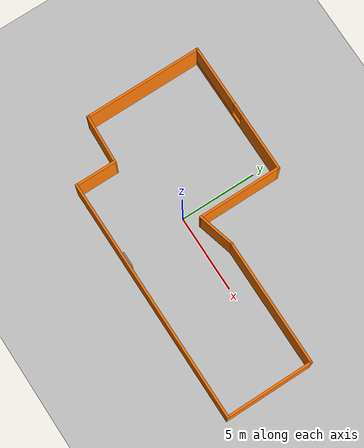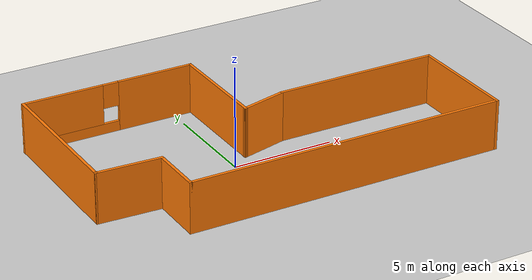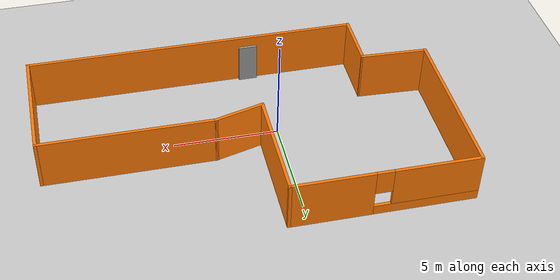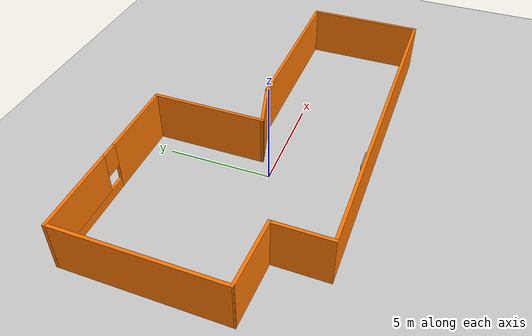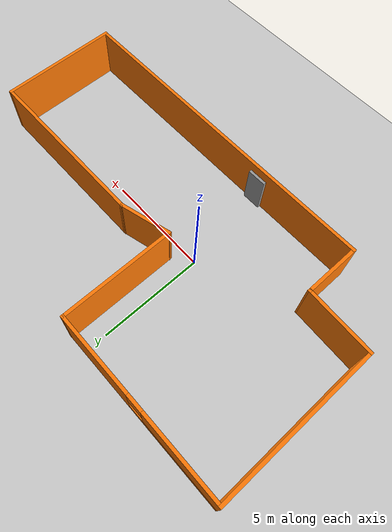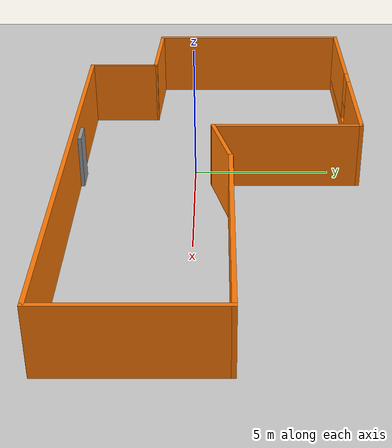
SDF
<sdf version="1.7">
 <world name="default">
  <light name="sun" type="directional">
   <pose>0 0 10 0 -0 0</pose>
   <diffuse>0.8 0.8 0.8 1</diffuse>
   <specular>0.2 0.2 0.2 1</specular>
   <attenuation>
    <range>1000</range>
    <constant>0.9</constant>
    <linear>0.01</linear>
    <quadratic>0.001</quadratic>
   </attenuation>
   <direction>-0.5 0.1 -0.9</direction>
   <spot><inner_angle>0</inner_angle><outer_angle>0</outer_angle><falloff>0</falloff></spot>
  </light>
  <model name="ground_plane">
   <static>1</static>
   <link name="link">
    <collision name="collision">
     <geometry><plane><normal>0 0 1</normal><size>100 100</size></plane></geometry>
     <surface><friction><ode><mu>100</mu><mu2>50</mu2></ode></friction></surface>
    </collision>
    <visual name="visual">
     <cast_shadows>0</cast_shadows>
     <geometry><plane><normal>0 0 1</normal><size>100 100</size></plane></geometry>
     <material>
      <script><uri>file://media/materials/scripts/gazebo.material</uri><name>Gazebo/Grey</name></script>
     </material>
    </visual>
   </link>
  </model>
  <gravity>0 0 -9.8</gravity>
  <magnetic_field>6e-06 2.3e-05 -4.2e-05</magnetic_field>
  <atmosphere type="adiabatic"/>
  <physics type="ode">
   <max_step_size>0.001</max_step_size>
   <real_time_factor>1</real_time_factor>
   <real_time_update_rate>1000</real_time_update_rate>
  </physics>
  <scene><ambient>0.4 0.4 0.4 1</ambient><background>0.7 0.7 0.7 1</background><shadows>1</shadows></scene>
  <spherical_coordinates>
   <surface_model>EARTH_WGS84</surface_model>
   <latitude_deg>0</latitude_deg>
   <longitude_deg>0</longitude_deg>
   <elevation>0</elevation>
   <heading_deg>0</heading_deg>
  </spherical_coordinates>
  <model name="Untitled3">
   <pose>1.79994 0.852436 0 0 -0 0</pose>
   <link name="Door_0">
    <collision name="Door_0_Collision">
     <geometry><box><size>0.9 0.17 2</size></box></geometry>
     <pose>0 0 1 0 -0 0</pose>
    </collision>
    <visual name="Door_0_Visual">
     <pose>0 0 1 0 -0 0</pose>
     <geometry><box><size>0.9 0.17 2</size></box></geometry>
     <material>
      <script><uri>file://media/materials/scripts/gazebo.material</uri><name>Gazebo/Grey</name></script>
     </material>
    </visual>
    <pose>-1.22543 -5.04758 0 0 -0 0</pose>
   </link>
   <link name="Wall_0">
    <collision name="Wall_0_Collision">
     <geometry><box><size>2.75 0.15 2.5</size></box></geometry>
     <pose>0 0 1.25 0 -0 0</pose>
    </collision>
    <visual name="Wall_0_Visual">
     <pose>0 0 1.25 0 -0 0</pose>
     <geometry><box><size>2.75 0.15 2.5</size></box></geometry>
     <material>
      <script><uri>file://media/materials/scripts/gazebo.material</uri><name>Gazebo/Grey</name></script>
      <ambient>0.996078 0.47451 0.0196078 1</ambient>
     </material>
     <meta><layer>0</layer></meta>
    </visual>
    <pose>-6.36337 -3.87089 0 0 -0 -1.5708</pose>
   </link>
   <link name="Wall_1">
    <collision name="Wall_1_Collision">
     <geometry><box><size>16 0.15 2.5</size></box></geometry>
     <pose>0 0 1.25 0 -0 0</pose>
    </collision>
    <visual name="Wall_1_Visual">
     <pose>0 0 1.25 0 -0 0</pose>
     <geometry><box><size>16 0.15 2.5</size></box></geometry>
     <material>
      <script><uri>file://media/materials/scripts/gazebo.material</uri><name>Gazebo/Grey</name></script>
      <ambient>0.996078 0.47451 0.0196078 1</ambient>
     </material>
     <meta><layer>0</layer></meta>
    </visual>
    <pose>1.56163 -5.17089 0 0 -0 0</pose>
   </link>
   <link name="Wall_2">
    <collision name="Wall_2_Collision">
     <geometry><box><size>5.75 0.15 2.5</size></box></geometry>
     <pose>0 0 1.25 0 -0 0</pose>
    </collision>
    <visual name="Wall_2_Visual">
     <pose>0 0 1.25 0 -0 0</pose>
     <geometry><box><size>5.75 0.15 2.5</size></box></geometry>
     <material>
      <script><uri>file://media/materials/scripts/gazebo.material</uri><name>Gazebo/Grey</name></script>
      <ambient>0.996078 0.47451 0.0196078 1</ambient>
     </material>
     <meta><layer>0</layer></meta>
    </visual>
    <pose>9.48663 -2.37089 0 0 -0 1.5708</pose>
   </link>
   <link name="Wall_3">
    <collision name="Wall_3_Collision">
     <geometry><box><size>8.25 0.15 2.5</size></box></geometry>
     <pose>0 0 1.25 0 -0 0</pose>
    </collision>
    <visual name="Wall_3_Visual">
     <pose>0 0 1.25 0 -0 0</pose>
     <geometry><box><size>8.25 0.15 2.5</size></box></geometry>
     <material>
      <script><uri>file://media/materials/scripts/gazebo.material</uri><name>Gazebo/Grey</name></script>
      <ambient>0.996078 0.47451 0.0196078 1</ambient>
     </material>
     <meta><layer>0</layer></meta>
    </visual>
    <pose>5.43663 0.429112 0 0 -0 3.14159</pose>
   </link>
   <link name="Wall_4">
    <collision name="Wall_4_Collision">
     <geometry><box><size>2.5 0.15 2.5</size></box></geometry>
     <pose>0 0 1.25 0 -0 0</pose>
    </collision>
    <visual name="Wall_4_Visual">
     <pose>0 0 1.25 0 -0 0</pose>
     <geometry><box><size>2.5 0.15 2.5</size></box></geometry>
     <material>
      <script><uri>file://media/materials/scripts/gazebo.material</uri><name>Gazebo/Grey</name></script>
      <ambient>0.996078 0.47451 0.0196078 1</ambient>
     </material>
     <meta><layer>0</layer></meta>
    </visual>
    <pose>0.251664 0.125 0 0 -0 -2.87979</pose>
   </link>
   <link name="Wall_5">
    <collision name="Wall_5_Collision">
     <geometry><box><size>5.5 0.15 2.5</size></box></geometry>
     <pose>0 0 1.25 0 -0 0</pose>
    </collision>
    <visual name="Wall_5_Visual">
     <pose>0 0 1.25 0 -0 0</pose>
     <geometry><box><size>5.5 0.15 2.5</size></box></geometry>
     <material>
      <script><uri>file://media/materials/scripts/gazebo.material</uri><name>Gazebo/Grey</name></script>
      <ambient>0.996078 0.47451 0.0196078 1</ambient>
     </material>
     <meta><layer>0</layer></meta>
    </visual>
    <pose>-0.883299 2.49589 0 0 -0 1.5708</pose>
   </link>
   <link name="Wall_6">
    <pose>-5.1833 5.17089 0 0 -0 3.14159</pose>
    <visual name="Wall_6_Visual_0">
     <pose>-2.42941 0 1.25 0 -0 0</pose>
     <geometry><box><size>3.89118 0.15 2.5</size></box></geometry>
     <material>
      <script><uri>file://media/materials/scripts/gazebo.material</uri><name>Gazebo/Grey</name></script>
      <ambient>0.996078 0.47451 0.0196078 1</ambient>
     </material>
     <meta><layer>0</layer></meta>
    </visual>
    <collision name="Wall_6_Collision_0">
     <geometry><box><size>3.89118 0.15 2.5</size></box></geometry>
     <pose>-2.42941 0 1.25 0 -0 0</pose>
    </collision>
    <visual name="Wall_6_Visual_1">
     <pose>1.94559 0 0.25 0 -0 0</pose>
     <geometry><box><size>4.85882 0.15 0.5</size></box></geometry>
     <material>
      <script><uri>file://media/materials/scripts/gazebo.material</uri><name>Gazebo/Grey</name></script>
      <ambient>0.996078 0.47451 0.0196078 1</ambient>
     </material>
     <meta><layer>0</layer></meta>
    </visual>
    <collision name="Wall_6_Collision_1">
     <geometry><box><size>4.85882 0.15 0.5</size></box></geometry>
     <pose>1.94559 0 0.25 0 -0 0</pose>
    </collision>
    <visual name="Wall_6_Visual_2">
     <pose>2.34559 0 1.5 0 -0 0</pose>
     <geometry><box><size>4.05882 0.15 2</size></box></geometry>
     <material>
      <script><uri>file://media/materials/scripts/gazebo.material</uri><name>Gazebo/Grey</name></script>
      <ambient>0.996078 0.47451 0.0196078 1</ambient>
     </material>
     <meta><layer>0</layer></meta>
    </visual>
    <collision name="Wall_6_Collision_2">
     <geometry><box><size>4.05882 0.15 2</size></box></geometry>
     <pose>2.34559 0 1.5 0 -0 0</pose>
    </collision>
    <visual name="Wall_6_Visual_3">
     <pose>-0.083818 0 1.9 0 -0 0</pose>
     <geometry><box><size>0.8 0.15 1.2</size></box></geometry>
     <material>
      <script><uri>file://media/materials/scripts/gazebo.material</uri><name>Gazebo/Grey</name></script>
      <ambient>0.996078 0.47451 0.0196078 1</ambient>
     </material>
     <meta><layer>0</layer></meta>
    </visual>
    <collision name="Wall_6_Collision_3">
     <geometry><box><size>0.8 0.15 1.2</size></box></geometry>
     <pose>-0.083818 0 1.9 0 -0 0</pose>
    </collision>
   </link>
   <link name="Wall_7">
    <collision name="Wall_7_Collision">
     <geometry><box><size>7.75 0.15 2.5</size></box></geometry>
     <pose>0 0 1.25 0 -0 0</pose>
    </collision>
    <visual name="Wall_7_Visual">
     <pose>0 0 1.25 0 -0 0</pose>
     <geometry><box><size>7.75 0.15 2.5</size></box></geometry>
     <material>
      <script><uri>file://media/materials/scripts/gazebo.material</uri><name>Gazebo/Grey</name></script>
      <ambient>0.996078 0.47451 0.0196078 1</ambient>
     </material>
     <meta><layer>0</layer></meta>
    </visual>
    <pose>-9.4833 1.37089 0 0 -0 -1.5708</pose>
   </link>
   <link name="Wall_8">
    <collision name="Wall_8_Collision">
     <geometry><box><size>3.27314 0.15 2.5</size></box></geometry>
     <pose>0 0 1.25 0 -0 0</pose>
    </collision>
    <visual name="Wall_8_Visual">
     <pose>0 0 1.25 0 -0 0</pose>
     <geometry><box><size>3.27314 0.15 2.5</size></box></geometry>
     <material>
      <script><uri>file://media/materials/scripts/gazebo.material</uri><name>Gazebo/Grey</name></script>
      <ambient>0.996078 0.47451 0.0196078 1</ambient>
     </material>
     <meta><layer>0</layer></meta>
    </visual>
    <pose>-7.92334 -2.5 0 0 -0 -0.045411</pose>
   </link>
   <static>1</static>
  </model>
 </world>
</sdf>
